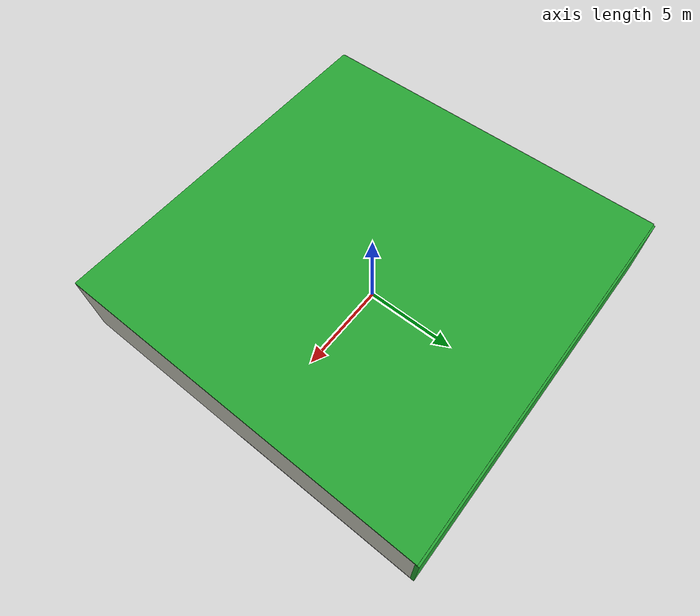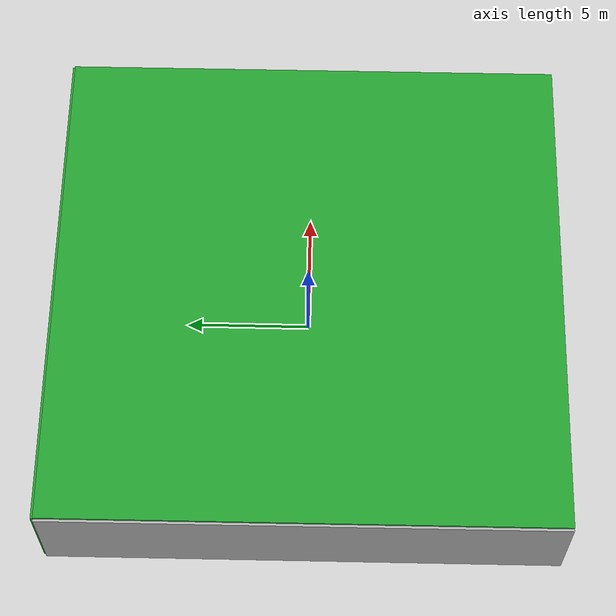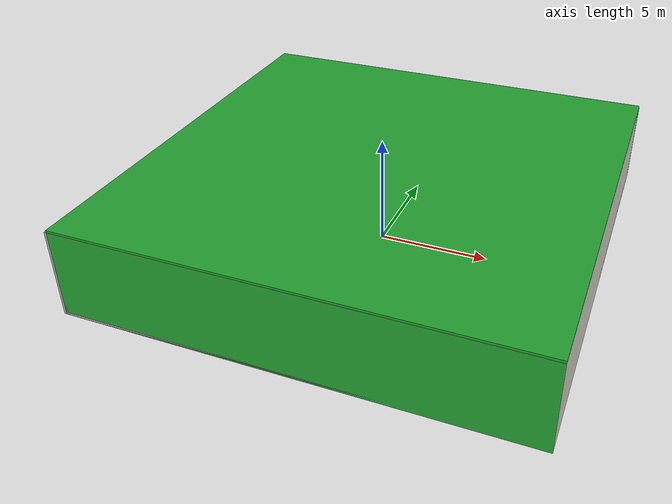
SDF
<sdf version="1.4">
 <world name="default">
  <physics type="ode">
   <max_step_size>0.001</max_step_size>
   <real_time_factor>1</real_time_factor>
   <real_time_update_rate>1000</real_time_update_rate>
   <gravity>0 0 -9.8</gravity>
  </physics>
  <scene><ambient>0.4 0.4 0.4 1</ambient><background>0.7 0.7 0.7 1</background><shadows>1</shadows></scene>
  <model name="Surrounding">
   <static>1</static>
   <link name="Ceiling">
    <collision name="Ceiling_Collision"><geometry><box><size>20 20 0.1</size></box></geometry></collision>
    <visual name="Ceiling_Visual">
     <geometry><box><size>20 20 0.1</size></box></geometry>
     <material>
      <script><uri>file://media/materials/scripts/gazebo.material</uri><name>Gazebo/GreenGlow</name></script>
     </material>
    </visual>
    <pose>0 0 4.05 0 0 0</pose>
   </link>
   <link name="Wall_South">
    <collision name="Wall_South_Collision">
     <geometry><box><size>20 0 4</size></box></geometry>
     <pose>0 0 2 0 -0 0</pose>
    </collision>
    <visual name="Wall_South_Visual">
     <pose>0 0 2 0 -0 0</pose>
     <geometry><box><size>20 0 4</size></box></geometry>
     <material>
      <script><uri>file://media/materials/scripts/gazebo.material</uri><name>Gazebo/Green</name></script>
     </material>
    </visual>
    <velocity_decay><linear>0</linear><angular>0</angular></velocity_decay>
    <pose>0 -10 0 0 -0 0</pose>
   </link>
   <link name="Wall_East">
    <collision name="Wall_21_Collision">
     <geometry><box><size>20 0 4</size></box></geometry>
     <pose>0 0 2 0 -0 0</pose>
    </collision>
    <visual name="Wall_21_Visual">
     <pose>0 0 2 0 -0 0</pose>
     <geometry><box><size>20 0 4</size></box></geometry>
     <material>
      <script><uri>file://media/materials/scripts/gazebo.material</uri><name>Gazebo/PaintedWall</name></script>
     </material>
    </visual>
    <velocity_decay><linear>0</linear><angular>0</angular></velocity_decay>
    <pose>10 0 0 0 -0 1.5708</pose>
   </link>
   <link name="Wall_North">
    <collision name="Wall_22_Collision">
     <geometry><box><size>20 0.2 4</size></box></geometry>
     <pose>0 0 2 0 -0 0</pose>
    </collision>
    <visual name="Wall_22_Visual">
     <pose>0 0 2 0 -0 0</pose>
     <geometry><box><size>20 0.2 4</size></box></geometry>
     <material>
      <script><uri>file://media/materials/scripts/gazebo.material</uri><name>Gazebo/Green</name></script>
     </material>
    </visual>
    <velocity_decay><linear>0</linear><angular>0</angular></velocity_decay>
    <pose>0 10 0 0 -0 0</pose>
   </link>
   <link name="Wall_West">
    <collision name="Wall_23_Collision">
     <geometry><box><size>20 0.2 4</size></box></geometry>
     <pose>0 0 2 0 -0 0</pose>
    </collision>
    <visual name="Wall_23_Visual">
     <pose>0 0 2 0 -0 0</pose>
     <geometry><box><size>20 0.2 4</size></box></geometry>
     <material>
      <script><uri>file://media/materials/scripts/gazebo.material</uri><name>Gazebo/PioneerBody</name></script>
     </material>
    </visual>
    <velocity_decay><linear>0</linear><angular>0</angular></velocity_decay>
    <pose>-10 0 0 0 0 -1.5708</pose>
   </link>
   <link name="Ground_link">
    <collision name="collision">
     <pose>0 0 .05 0 -0 0</pose>
     <geometry><box><size>20 20 0.1</size></box></geometry>
    </collision>
    <visual name="visual">
     <pose>0 0 .05 0 -0 0</pose>
     <geometry><box><size>20 20 0.1</size></box></geometry>
     <material>
      <script><uri>file://media/materials/scripts/gazebo.material</uri><name>Gazebo/PioneerBody</name></script>
     </material>
    </visual>
   </link>
   <static>1</static>
  </model>
  <spherical_coordinates>
   <surface_model>EARTH_WGS84</surface_model>
   <latitude_deg>0</latitude_deg>
   <longitude_deg>0</longitude_deg>
   <elevation>0</elevation>
   <heading_deg>0</heading_deg>
  </spherical_coordinates>
  <light name="lightball_0" type="diffuse">
   <diffuse>0.8 0.8 0.8 1</diffuse>
   <specular>0.2 0.2 0.2 1</specular>
   <attenuation>
    <range>100</range>
    <constant>0.7</constant>
    <linear>0.01</linear>
    <quadratic>0.001</quadratic>
   </attenuation>
   <direction>-0.5 0.1 -0.9</direction>
   <pose>-7.80031559253 1.26138958164 3.8859373683 0 0 0</pose>
  </light>
  <light name="lightball_1" type="diffuse">
   <diffuse>0.8 0.8 0.8 1</diffuse>
   <specular>0.2 0.2 0.2 1</specular>
   <attenuation>
    <range>100</range>
    <constant>0.7</constant>
    <linear>0.01</linear>
    <quadratic>0.001</quadratic>
   </attenuation>
   <direction>-0.5 0.1 -0.9</direction>
   <pose>7.65486432141 -0.231264076929 3.75027307996 0 0 0</pose>
  </light>
  <light name="lightball_2" type="diffuse">
   <diffuse>0.8 0.8 0.8 1</diffuse>
   <specular>0.2 0.2 0.2 1</specular>
   <attenuation>
    <range>100</range>
    <constant>0.7</constant>
    <linear>0.01</linear>
    <quadratic>0.001</quadratic>
   </attenuation>
   <direction>-0.5 0.1 -0.9</direction>
   <pose>-0.771263155535 -6.3258614166 1.15977016873 0 0 0</pose>
  </light>
  <light name="lightball_3" type="diffuse">
   <diffuse>0.8 0.8 0.8 1</diffuse>
   <specular>0.2 0.2 0.2 1</specular>
   <attenuation>
    <range>100</range>
    <constant>0.7</constant>
    <linear>0.01</linear>
    <quadratic>0.001</quadratic>
   </attenuation>
   <direction>-0.5 0.1 -0.9</direction>
   <pose>-3.78248519883 -3.22638734032 1.2668347265 0 0 0</pose>
  </light>
  <light name="lightball_4" type="diffuse">
   <diffuse>0.8 0.8 0.8 1</diffuse>
   <specular>0.2 0.2 0.2 1</specular>
   <attenuation>
    <range>100</range>
    <constant>0.7</constant>
    <linear>0.01</linear>
    <quadratic>0.001</quadratic>
   </attenuation>
   <direction>-0.5 0.1 -0.9</direction>
   <pose>7.90458217112 8.34314939939 0.74139371761 0 0 0</pose>
  </light>
  <light name="lightball_5" type="diffuse">
   <diffuse>0.8 0.8 0.8 1</diffuse>
   <specular>0.2 0.2 0.2 1</specular>
   <attenuation>
    <range>100</range>
    <constant>0.7</constant>
    <linear>0.01</linear>
    <quadratic>0.001</quadratic>
   </attenuation>
   <direction>-0.5 0.1 -0.9</direction>
   <pose>6.29480281359 8.40653025637 2.57781068602 0 0 0</pose>
  </light>
  <light name="lightball_6" type="diffuse">
   <diffuse>0.8 0.8 0.8 1</diffuse>
   <specular>0.2 0.2 0.2 1</specular>
   <attenuation>
    <range>100</range>
    <constant>0.7</constant>
    <linear>0.01</linear>
    <quadratic>0.001</quadratic>
   </attenuation>
   <direction>-0.5 0.1 -0.9</direction>
   <pose>-0.69496493167 -0.395366283886 1.90457690872 0 0 0</pose>
  </light>
  <light name="lightball_7" type="diffuse">
   <diffuse>0.8 0.8 0.8 1</diffuse>
   <specular>0.2 0.2 0.2 1</specular>
   <attenuation>
    <range>100</range>
    <constant>0.7</constant>
    <linear>0.01</linear>
    <quadratic>0.001</quadratic>
   </attenuation>
   <direction>-0.5 0.1 -0.9</direction>
   <pose>9.83769958351 -2.4914318648 2.00713471273 0 0 0</pose>
  </light>
  <light name="lightball_8" type="diffuse">
   <diffuse>0.8 0.8 0.8 1</diffuse>
   <specular>0.2 0.2 0.2 1</specular>
   <attenuation>
    <range>100</range>
    <constant>0.7</constant>
    <linear>0.01</linear>
    <quadratic>0.001</quadratic>
   </attenuation>
   <direction>-0.5 0.1 -0.9</direction>
   <pose>-3.79640581117 1.08354867999 2.50954368313 0 0 0</pose>
  </light>
  <light name="lightball_9" type="diffuse">
   <diffuse>0.8 0.8 0.8 1</diffuse>
   <specular>0.2 0.2 0.2 1</specular>
   <attenuation>
    <range>100</range>
    <constant>0.7</constant>
    <linear>0.01</linear>
    <quadratic>0.001</quadratic>
   </attenuation>
   <direction>-0.5 0.1 -0.9</direction>
   <pose>-8.17984877566 -7.82792801521 2.69049822638 0 0 0</pose>
  </light>
  <light name="lightball_10" type="diffuse">
   <diffuse>0.8 0.8 0.8 1</diffuse>
   <specular>0.2 0.2 0.2 1</specular>
   <attenuation>
    <range>100</range>
    <constant>0.7</constant>
    <linear>0.01</linear>
    <quadratic>0.001</quadratic>
   </attenuation>
   <direction>-0.5 0.1 -0.9</direction>
   <pose>-6.85061549547 -9.44855553459 1.23621372876 0 0 0</pose>
  </light>
  <light name="lightball_11" type="diffuse">
   <diffuse>0.8 0.8 0.8 1</diffuse>
   <specular>0.2 0.2 0.2 1</specular>
   <attenuation>
    <range>100</range>
    <constant>0.7</constant>
    <linear>0.01</linear>
    <quadratic>0.001</quadratic>
   </attenuation>
   <direction>-0.5 0.1 -0.9</direction>
   <pose>1.07100667508 -4.49745917043 1.66347918969 0 0 0</pose>
  </light>
  <light name="lightball_12" type="diffuse">
   <diffuse>0.8 0.8 0.8 1</diffuse>
   <specular>0.2 0.2 0.2 1</specular>
   <attenuation>
    <range>100</range>
    <constant>0.7</constant>
    <linear>0.01</linear>
    <quadratic>0.001</quadratic>
   </attenuation>
   <direction>-0.5 0.1 -0.9</direction>
   <pose>6.68182435919 -0.0919895840812 1.23254488203 0 0 0</pose>
  </light>
  <light name="lightball_13" type="diffuse">
   <diffuse>0.8 0.8 0.8 1</diffuse>
   <specular>0.2 0.2 0.2 1</specular>
   <attenuation>
    <range>100</range>
    <constant>0.7</constant>
    <linear>0.01</linear>
    <quadratic>0.001</quadratic>
   </attenuation>
   <direction>-0.5 0.1 -0.9</direction>
   <pose>9.67670974531 6.01189087623 3.17064013403 0 0 0</pose>
  </light>
  <include><uri>model://table</uri><pose>-6.98200332406 -7.90655210535 0 0 0 1.88419530473</pose></include>
  <include>
   <uri>model://robocup_3Dsim_goal</uri>
   <pose>-7.71494726514 1.66850191706 0 0 0 1.18610248634</pose>
  </include>
  <include><uri>model://table</uri><pose>-3.74617443811 -4.62738843932 0 0 0 2.28486787294</pose></include>
  <include><uri>model://cabinet</uri><pose>-5.27713371498 1.08421416148 0 0 0 2.41152692074</pose></include>
  <include>
   <uri>model://construction_cone</uri>
   <pose>-1.17232376662 1.61482277514 0 0 0 0.620148534109</pose>
  </include>
  <include><uri>model://cabinet</uri><pose>4.56745453169 -8.0787257516 0 0 0 2.56229412477</pose></include>
  <include>
   <uri>model://textured_shapes</uri>
   <pose>4.13598874121 1.71727999362 0 0 0 0.755656613705</pose>
  </include>
 </world>
</sdf>

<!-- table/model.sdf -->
<sdf version="1.5">
  <model name="table">
    <static>true</static>
    <link name="link">
      <collision name="surface">
        <pose>0 0 1.0 0 0 0</pose>
        <geometry>
          <box>
            <size>1.5 0.8 0.03</size>
          </box>
        </geometry>
        <surface>
          <friction>
            <ode>
              <mu>0.6</mu>
              <mu2>0.6</mu2>
            </ode>
          </friction>
        </surface>
      </collision>
      <visual name="visual1">
        <pose>0 0 1.0 0 0 0</pose>
        <geometry>
          <box>
            <size>1.5 0.8 0.03</size>
          </box>
        </geometry>
        <material>
          <script>
            <uri>model://media/materials/scripts/gazebo.material</uri>
            <name>Gazebo/Wood</name>
          </script>
        </material>
      </visual>
      <collision name="front_left_leg">
        <pose>0.68 0.38 0.5 0 0 0</pose>
        <geometry>
          <cylinder>
            <radius>0.02</radius>
            <length>1.0</length>
          </cylinder>
        </geometry>
      </collision>
      <visual name="front_left_leg">
        <pose>0.68 0.38 0.5 0 0 0</pose>
        <geometry>
          <cylinder>
            <radius>0.02</radius>
            <length>1.0</length>
          </cylinder>
        </geometry>
        <material>
          <script>
            <uri>model://media/materials/scripts/gazebo.material</uri>
            <name>Gazebo/Grey</name>
          </script>
        </material>
      </visual>
      <collision name="front_right_leg">
        <pose>0.68 -0.38 0.5 0 0 0</pose>
        <geometry>
          <cylinder>
            <radius>0.02</radius>
            <length>1.0</length>
          </cylinder>
        </geometry>
      </collision>
      <visual name="front_right_leg">
        <pose>0.68 -0.38 0.5 0 0 0</pose>
        <geometry>
          <cylinder>
            <radius>0.02</radius>
            <length>1.0</length>
          </cylinder>
        </geometry>
        <material>
          <script>
            <uri>model://media/materials/scripts/gazebo.material</uri>
            <name>Gazebo/Grey</name>
          </script>
        </material>
      </visual>
      <collision name="back_right_leg">
        <pose>-0.68 -0.38 0.5 0 0 0</pose>
        <geometry>
          <cylinder>
            <radius>0.02</radius>
            <length>1.0</length>
          </cylinder>
        </geometry>
      </collision>
      <visual name="back_right_leg">
        <pose>-0.68 -0.38 0.5 0 0 0</pose>
        <geometry>
          <cylinder>
            <radius>0.02</radius>
            <length>1.0</length>
          </cylinder>
        </geometry>
        <material>
          <script>
            <uri>model://media/materials/scripts/gazebo.material</uri>
            <name>Gazebo/Grey</name>
          </script>
        </material>
      </visual>
      <collision name="back_left_leg">
        <pose>-0.68 0.38 0.5 0 0 0</pose>
        <geometry>
          <cylinder>
            <radius>0.02</radius>
            <length>1.0</length>
          </cylinder>
        </geometry>
      </collision>
      <visual name="back_left_leg">
        <pose>-0.68 0.38 0.5 0 0 0</pose>
        <geometry>
          <cylinder>
            <radius>0.02</radius>
            <length>1.0</length>
          </cylinder>
        </geometry>
        <material>
          <script>
            <uri>model://media/materials/scripts/gazebo.material</uri>
            <name>Gazebo/Grey</name>
          </script>
        </material>
      </visual>
    </link>
  </model>
</sdf>

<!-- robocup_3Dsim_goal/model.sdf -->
<sdf version="1.5">
  <model name="robocup_3d_goal">
    <static>true</static>
    <link name="left_post">
      <pose>0 1.05 0.45 0 0 0</pose>
      <collision name="collision">
        <geometry>
          <cylinder>
            <radius>0.05</radius>
            <length>0.9</length>
          </cylinder>
        </geometry>
      </collision>
      <visual name="visual">
        <geometry>
          <cylinder>
            <radius>0.05</radius>
            <length>0.9</length>
          </cylinder>
        </geometry>
        <material>
          <script>
            <uri>file://media/materials/scripts/gazebo.material</uri>
            <name>Gazebo/ZincYellow</name>
          </script>
        </material>
      </visual>
    </link>
    <link name="left_support_horiz_lower">
      <pose>0.30 1.05 0.01 0 0 0</pose>
      <collision name="collision">
        <geometry>
          <box>
            <size>0.50 0.02 0.02</size>
          </box>
        </geometry>
      </collision>
      <visual name="visual">
        <geometry>
          <box>
            <size>0.50 0.02 0.02</size>
          </box>
        </geometry>
        <material>
          <script>
            <uri>file://media/materials/scripts/gazebo.material</uri>
            <name>Gazebo/White</name>
          </script>
        </material>
      </visual>
    </link>
    <link name="left_support_horiz_upper">
      <pose>0.30 1.05 0.79 0 0 0</pose>
      <collision name="collision">
        <geometry>
          <box>
            <size>0.50 0.02 0.02</size>
          </box>
        </geometry>
      </collision>
      <visual name="visual">
        <geometry>
          <box>
            <size>0.50 0.02 0.02</size>
          </box>
        </geometry>
        <material>
          <script>
            <uri>file://media/materials/scripts/gazebo.material</uri>
            <name>Gazebo/White</name>
          </script>
        </material>
      </visual>
    </link>
    <link name="left_support_vertical">
      <pose>0.56 1.05 0.4 0 1.5708 0</pose>
      <collision name="collision">
        <geometry>
          <box>
            <size>0.80 0.02 0.02</size>
          </box>
        </geometry>
      </collision>
      <visual name="visual">
        <geometry>
          <box>
            <size>0.80 0.02 0.02</size>
          </box>
        </geometry>
        <material>
          <script>
            <uri>file://media/materials/scripts/gazebo.material</uri>
            <name>Gazebo/White</name>
          </script>
        </material>
      </visual>
    </link>
    <link name="right_support_horiz_lower">
      <pose>0.30 -1.05 0.01 0 0 0</pose>
      <collision name="collision">
        <geometry>
          <box>
            <size>0.50 0.02 0.02</size>
          </box>
        </geometry>
      </collision>
      <visual name="visual">
        <geometry>
          <box>
            <size>0.50 0.02 0.02</size>
          </box>
        </geometry>
        <material>
          <script>
            <uri>file://media/materials/scripts/gazebo.material</uri>
            <name>Gazebo/White</name>
          </script>
        </material>
      </visual>
    </link>
    <link name="right_support_horiz_upper">
      <pose>0.30 -1.05 0.79 0 0 0</pose>
      <collision name="collision">
        <geometry>
          <box>
            <size>0.50 0.02 0.02</size>
          </box>
        </geometry>
      </collision>
      <visual name="visual">
        <geometry>
          <box>
            <size>0.50 0.02 0.02</size>
          </box>
        </geometry>
        <material>
          <script>
            <uri>file://media/materials/scripts/gazebo.material</uri>
            <name>Gazebo/White</name>
          </script>
        </material>
      </visual>
    </link>
    <link name="right_support_vertical">
      <pose>0.56 -1.05 0.4 0 1.5708 0</pose>
      <collision name="collision">
        <geometry>
          <box>
            <size>0.80 0.02 0.02</size>
          </box>
        </geometry>
      </collision>
      <visual name="visual">
        <geometry>
          <box>
            <size>0.80 0.02 0.02</size>
          </box>
        </geometry>
        <material>
          <script>
            <uri>file://media/materials/scripts/gazebo.material</uri>
            <name>Gazebo/White</name>
          </script>
        </material>
      </visual>
    </link>
    <link name="center_support_horiz_lower">
      <pose>0.56 0 0.01 0 1.5708 0</pose>
      <collision name="collision">
        <geometry>
          <box>
            <size>0.02 2.08 0.02</size>
          </box>
        </geometry>
      </collision>
      <visual name="visual">
        <geometry>
          <box>
            <size>0.02 2.08 0.02</size>
          </box>
        </geometry>
        <material>
          <script>
            <uri>file://media/materials/scripts/gazebo.material</uri>
            <name>Gazebo/White</name>
          </script>
        </material>
      </visual>
    </link>
    <link name="center_support_horiz_upper">
      <pose>0.56 0 0.79 0 1.5708 0</pose>
      <collision name="collision">
        <geometry>
          <box>
            <size>0.02 2.08 0.02</size>
          </box>
        </geometry>
      </collision>
      <visual name="visual">
        <geometry>
          <box>
            <size>0.02 2.08 0.02</size>
          </box>
        </geometry>
        <material>
          <script>
            <uri>file://media/materials/scripts/gazebo.material</uri>
            <name>Gazebo/White</name>
          </script>
        </material>
      </visual>
    </link>
    <link name="right_post">
      <pose>0 -1.05 0.45 0 0 0</pose>
      <collision name="collision">
        <geometry>
          <cylinder>
            <radius>0.05</radius>
            <length>0.9</length>
          </cylinder>
        </geometry>
      </collision>
      <visual name="visual">
        <geometry>
          <cylinder>
            <radius>0.05</radius>
            <length>0.9</length>
          </cylinder>
        </geometry>
        <material>
          <script>
            <uri>file://media/materials/scripts/gazebo.material</uri>
            <name>Gazebo/ZincYellow</name>
          </script>
        </material>
      </visual>
    </link>
    <link name="crossbar">
      <pose>0 0 0.85 1.57 1.57 0</pose>
      <collision name="collision">
        <geometry>
          <cylinder>
            <radius>0.05</radius>
            <length>2.0</length>
          </cylinder>
        </geometry>
      </collision>
      <visual name="visual">
        <geometry>
          <cylinder>
            <radius>0.05</radius>
            <length>2.0</length>
          </cylinder>
        </geometry>
        <material>
          <script>
            <uri>file://media/materials/scripts/gazebo.material</uri>
            <name>Gazebo/ZincYellow</name>
          </script>
        </material>
      </visual>
    </link>
    <link name="center_net">
      <pose>0.56 0 0.40 0 0 0</pose>
      <collision name="collision">
        <geometry>
          <box>
            <size>0.01 2.1 0.80</size>
          </box>
        </geometry>
      </collision>
      <visual name="visual">
        <geometry>
          <box>
            <size>0.01 2.1 0.80</size>
          </box>
        </geometry>
        <material>
          <script>
            <uri>model://../model_source/models/robocup09_spl_field/materials/scripts/</uri>
            <uri>model://../model_source/models/robocup09_spl_field/materials/textures/</uri>
            <name>RoboCup/Net</name>
          </script>
        </material>
      </visual>
    </link>
    <link name="left_net">
      <pose>0.30 1.05 0.40 0 0 0</pose>
      <collision name="collision">
        <geometry>
          <box>
            <size>0.50 0.01 0.76</size>
          </box>
        </geometry>
      </collision>
      <visual name="visual">
        <geometry>
          <box>
            <size>0.50 0.01 0.76</size>
          </box>
        </geometry>
        <material>
          <script>
            <uri>model://../model_source/models/robocup09_spl_field/materials/scripts/</uri>
            <uri>model://../model_source/models/robocup09_spl_field/materials/textures/</uri>
            <name>RoboCup/Net</name>
          </script>
        </material>
      </visual>
    </link>
    <link name="right_net">
      <pose>0.30 -1.05 0.40 0 0 0</pose>
      <collision name="collision">
        <geometry>
          <box>
            <size>0.50 0.01 0.76</size>
          </box>
        </geometry>
      </collision>
      <visual name="visual">
        <geometry>
          <box>
            <size>0.50 0.01 0.76</size>
          </box>
        </geometry>
        <material>
          <script>
            <uri>model://../model_source/models/robocup09_spl_field/materials/scripts/</uri>
            <uri>model://../model_source/models/robocup09_spl_field/materials/textures/</uri>
            <name>RoboCup/Net</name>
          </script>
        </material>
      </visual>
    </link>
  </model>
</sdf>

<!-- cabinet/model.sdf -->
<sdf version="1.5">
  <model name="cabinet">
    <static>true</static>
    <link name="cabinet_bottom_plate">
      <inertial>
        <pose>0 0 -1 0 0 0</pose>
        <inertia>
          <ixx>2.050000</ixx>
          <ixy>0</ixy>
          <ixz>0</ixz>
          <iyy>2.050000</iyy>
          <iyz>0</iyz>
          <izz>2.050000</izz>
        </inertia>
        <mass>25.000000</mass>
      </inertial>
      <collision name="cabinet_bottom_plate_geom">
        <pose>0 0 0.010000 0 0 0</pose>
        <geometry>
          <box>
            <size>0.450000 0.450000 0.020000</size>
          </box>
        </geometry>
      </collision>
      <visual name="cabinet_bottom_plate_geom_visual">
        <pose>0 0 0.010000 0 0 0</pose>
        <geometry>
          <box>
            <size>0.450000 0.450000 0.020000</size>
          </box>
        </geometry>
        <material>
          <script>
            <uri>model://media/materials/scripts/gazebo.material</uri>
            <name>Gazebo/Wood</name>
          </script>
        </material>
      </visual>
      <collision name="cabinet_bottom_plate_geom_cabinet_back_plate">
        <pose>0.235000 0 0.510000 0 0 0</pose>
        <geometry>
          <box>
            <size>0.020000 0.450000 1.020000</size>
          </box>
        </geometry>
      </collision>
      <visual name="cabinet_bottom_plate_geom_cabinet_back_plate_visual">
        <pose>0.235000 0 0.510000 0 0 0</pose>
        <geometry>
          <box>
            <size>0.020000 0.450000 1.020000</size>
          </box>
        </geometry>
        <material>
          <script>
            <uri>model://media/materials/scripts/gazebo.material</uri>
            <name>Gazebo/Wood</name>
          </script>
        </material>
      </visual>
      <collision name="cabinet_bottom_plate_geom_cabinet_left_plate">
        <pose>0 0.235000 0.510000 0 0 0</pose>
        <geometry>
          <box>
            <size>0.450000 0.020000 1.020000</size>
          </box>
        </geometry>
      </collision>
      <visual name="cabinet_bottom_plate_geom_cabinet_left_plate_visual">
        <pose>0 0.235000 0.510000 0 0 0</pose>
        <geometry>
          <box>
            <size>0.450000 0.020000 1.020000</size>
          </box>
        </geometry>
        <material>
          <script>
            <uri>model://media/materials/scripts/gazebo.material</uri>
            <name>Gazebo/Wood</name>
          </script>
        </material>
      </visual>
      <collision name="cabinet_bottom_plate_geom_cabinet_middle_plate">
        <pose>0 0 0.510000 0 0 0</pose>
        <geometry>
          <box>
            <size>0.450000 0.450000 0.020000</size>
          </box>
        </geometry>
      </collision>
      <visual name="cabinet_bottom_plate_geom_cabinet_middle_plate_visual">
        <pose>0 0 0.510000 0 0 0</pose>
        <geometry>
          <box>
            <size>0.450000 0.450000 0.020000</size>
          </box>
        </geometry>
        <material>
          <script>
            <uri>model://media/materials/scripts/gazebo.material</uri>
            <name>Gazebo/Wood</name>
          </script>
        </material>
      </visual>
      <collision name="cabinet_bottom_plate_geom_cabinet_right_plate">
        <pose>0 -0.235000 0.510000 0 0 0</pose>
        <geometry>
          <box>
            <size>0.450000 0.020000 1.020000</size>
          </box>
        </geometry>
      </collision>
      <visual name="cabinet_bottom_plate_geom_cabinet_right_plate_visual">
        <pose>0 -0.235000 0.510000 0 0 0</pose>
        <geometry>
          <box>
            <size>0.450000 0.020000 1.020000</size>
          </box>
        </geometry>
        <material>
          <script>
            <uri>model://media/materials/scripts/gazebo.material</uri>
            <name>Gazebo/Wood</name>
          </script>
        </material>
      </visual>
      <collision name="cabinet_bottom_plate_geom_cabinet_top_plate">
        <pose>0 0 1.010000 0 0 0</pose>
        <geometry>
          <box>
            <size>0.450000 0.450000 0.020000</size>
          </box>
        </geometry>
      </collision>
      <visual name="cabinet_bottom_plate_geom_cabinet_top_plate_visual">
        <pose>0 0 1.010000 0 0 0</pose>
        <geometry>
          <box>
            <size>0.450000 0.450000 0.020000</size>
          </box>
        </geometry>
        <material>
          <script>
            <uri>model://media/materials/scripts/gazebo.material</uri>
            <name>Gazebo/Wood</name>
          </script>
        </material>
      </visual>
    </link>
  </model>
</sdf>

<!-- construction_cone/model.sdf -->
<sdf version="1.5">
  <model name="Construction Cone">
    <link name="link">
      <collision name="collision">
        <geometry>
          <mesh>
            <scale>10 10 10</scale>
            <uri>file://isr-testbed/construction_cone/meshes/construction_cone.dae</uri>
          </mesh>
        </geometry>
      </collision>
      <visual name="visual">
        <geometry>
          <mesh>
            <scale>10 10 10</scale>
            <uri>file://isr-testbed/construction_cone/meshes/construction_cone.dae</uri>
          </mesh>
        </geometry>
      </visual>
    </link>
  </model>
</sdf>

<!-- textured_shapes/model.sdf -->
<sdf version="1.6">
  <model name="textured_shapes">
    <pose>0 0 0.5 0 0 0</pose>
    <link name="box">
      <pose>0 -1.5 0 0 0 0</pose>
      <collision name="collision">
        <geometry>
          <box>
            <size>1 1 1</size>
          </box>
        </geometry>
      </collision>
      <visual name="visual">
        <geometry>
          <box>
            <size>1 1 1</size>
          </box>
        </geometry>
        <material>
          <script>
            <uri>model://../model_source/models/textured_shapes/materials/scripts</uri>
            <uri>model://../model_source/models/textured_shapes/materials/textures</uri>
            <name>TexturedShape/Squares</name>
          </script>
        </material>
      </visual>
    </link>
    <link name="sphere">
      <collision name="collision">
        <geometry>
          <sphere>
            <radius>0.5</radius>
          </sphere>
        </geometry>
      </collision>
      <visual name="visual">
        <geometry>
          <sphere>
            <radius>0.5</radius>
          </sphere>
        </geometry>
        <material>
          <script>
            <uri>model://../model_source/models/textured_shapes/materials/scripts</uri>
            <uri>model://../model_source/models/textured_shapes/materials/textures</uri>
            <name>TexturedShape/Squares</name>
          </script>
        </material>
      </visual>
    </link>
    <link name="cylinder">
      <pose>0 1.5 0 0 0 0</pose>
      <collision name="collision">
        <geometry>
          <cylinder>
            <radius>0.5</radius>
            <length>1</length>
          </cylinder>
        </geometry>
      </collision>
      <visual name="visual">
        <geometry>
          <cylinder>
            <radius>0.5</radius>
            <length>1</length>
          </cylinder>
        </geometry>
        <material>
          <script>
            <uri>model://../model_source/models/textured_shapes/materials/scripts</uri>
            <uri>model://../model_source/models/textured_shapes/materials/textures</uri>
            <name>TexturedShape/Squares</name>
          </script>
        </material>
      </visual>
    </link>
  </model>
</sdf>
